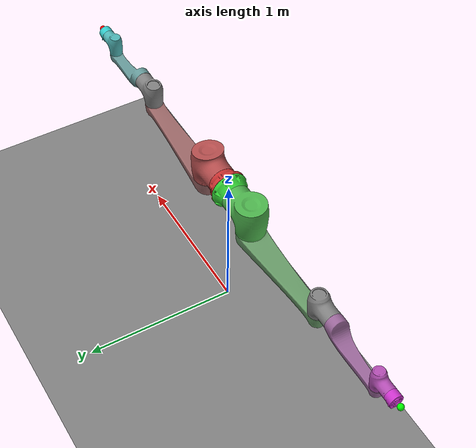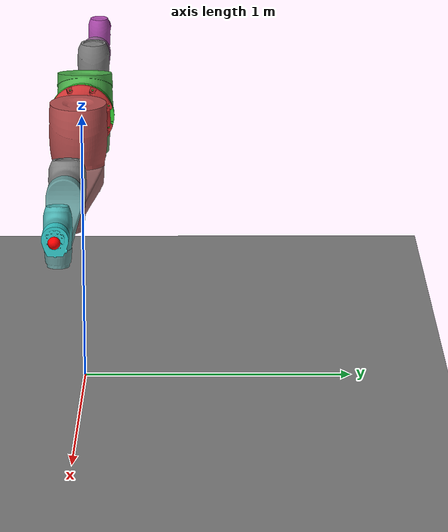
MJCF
<?xml version="1.0" ?>
<mujoco model="dual_elfin15_clean">
    <!-- 全局设置 -->
    <compiler angle="radian" coordinate="local" inertiafromgeom="true"/>

    <!-- 物理参数 -->
    <option gravity="0 0 -9.81" integrator="RK4" timestep="0.002"/>

    <!-- 资产定义 -->
    <asset>
        <!-- Elfin15网格文件 - 左侧机械臂 -->
        <mesh name="elfin_left_base" file="mjcf_models/elfin15/elfin_base.STL"/>
        <mesh name="elfin_left_link1" file="mjcf_models/elfin15/elfin_link1.STL"/>
        <mesh name="elfin_left_link2" file="mjcf_models/elfin15/elfin_link2.STL"/>
        <mesh name="elfin_left_link3" file="mjcf_models/elfin15/elfin_link3.STL"/>
        <mesh name="elfin_left_link4" file="mjcf_models/elfin15/elfin_link4.STL"/>
        <mesh name="elfin_left_link5" file="mjcf_models/elfin15/elfin_link5.STL"/>
        <mesh name="elfin_left_link6" file="mjcf_models/elfin15/elfin_link6.STL"/>

        <!-- Elfin15网格文件 - 右侧机械臂 -->
        <mesh name="elfin_right_base" file="mjcf_models/elfin15/elfin_base.STL"/>
        <mesh name="elfin_right_link1" file="mjcf_models/elfin15/elfin_link1.STL"/>
        <mesh name="elfin_right_link2" file="mjcf_models/elfin15/elfin_link2.STL"/>
        <mesh name="elfin_right_link3" file="mjcf_models/elfin15/elfin_link3.STL"/>
        <mesh name="elfin_right_link4" file="mjcf_models/elfin15/elfin_link4.STL"/>
        <mesh name="elfin_right_link5" file="mjcf_models/elfin15/elfin_link5.STL"/>
        <mesh name="elfin_right_link6" file="mjcf_models/elfin15/elfin_link6.STL"/>
    </asset>

    <!-- 默认设置 -->
    <default>
        <joint armature="0.1" damping="1" limited="true"/>
        <geom type="mesh"/>
        <motor ctrlrange="-3.14 3.14" ctrllimited="true"/>
    </default>

    <!-- 世界坐标系 -->
    <worldbody>
        <!-- 地面 -->
        <geom name="ground" type="plane" size="2 2 0.1" rgba="0.5 0.5 0.5 1" pos="0 0 0"/>

        <!-- 光源 -->
        <light diffuse=".8 .8 .8" pos="0 0 3" dir="0 0 -1"/>
        <light diffuse=".3 .3 .3" pos="2 2 2" dir="-1 -1 -1"/>

        <!-- 左侧机械臂 (红色系) -->
        <body name="left_robot_base" pos="0 0 1.0" euler="1.57 1.57 0">
            <geom type="mesh" rgba="0.8 0.2 0.2 1" mesh="elfin_left_base"/>
            <body name="left_link1" pos="0 0 0.262">
                <inertial pos="-1.88838e-06 -0.00357535 -0.0358732" quat="0.998738 0.0502277 4.92096e-05 -7.54994e-05" mass="26.1753" diaginertia="0.235853 0.212365 0.1579"/>
                <joint name="left_joint1" pos="0 0 0" axis="0 0 1" range="-3.14 3.14"/>
                <geom type="mesh" rgba="0.7 0.3 0.3 1" mesh="elfin_left_link1"/>
                <body name="left_link2" quat="0.707105 0.707108 0 0">
                    <inertial pos="2.05933e-05 0.292081 0.154042" quat="0.513249 0.485908 -0.486417 0.513681" mass="25.7827" diaginertia="1.61404 1.59116 0.0559177"/>
                    <joint name="left_joint2" pos="0 0 0" axis="0 0 1" range="-2.35 2.35"/>
                    <geom type="mesh" rgba="0.6 0.4 0.4 1" mesh="elfin_left_link2"/>
                    <body name="left_link3" pos="0 0.73 0" quat="-2.59734e-06 0.707105 0.707108 -2.59735e-06">
                        <inertial pos="0.0361013 -2.09104e-06 -0.00436987" quat="0.529158 0.469078 0.469085 0.529072" mass="7.87585" diaginertia="0.036645 0.0320625 0.019885"/>
                        <joint name="left_joint3" pos="0 0 0" axis="0 0 1" range="-2.61 2.61"/>
                        <geom type="mesh" rgba="0.5 0.5 0.5 1" mesh="elfin_left_link3"/>
                        <body name="left_link4" quat="0.499998 0.5 0.500002 0.5">
                            <inertial pos="3.69862e-05 -0.0650226 0.320849" quat="0.992592 0.121493 0.000259111 -0.000578748" mass="7.61388" diaginertia="0.16194 0.159247 0.0128573"/>
                            <joint name="left_joint4" pos="0 0 0" axis="0 0 1" range="-3.14 3.14"/>
                            <geom type="mesh" rgba="0.4 0.6 0.6 1" mesh="elfin_left_link4"/>
                            <body name="left_link5" pos="0 0 0.57" quat="0.707105 -0.707108 0 0">
                                <inertial pos="6.77522e-06 -0.0250232 -0.002491" quat="0.754143 0.656711 0.00028124 -0.000151073" mass="3.39285" diaginertia="0.00944879 0.00740998 0.00543183"/>
                                <joint name="left_joint5" pos="0 0 0" axis="0 0 1" range="-2.56 2.56"/>
                                <geom type="mesh" rgba="0.3 0.7 0.7 1" mesh="elfin_left_link5"/>
                                <body name="left_link6" quat="0.707105 0.707108 0 0">
                                    <inertial pos="6.22099e-05 -0.00431405 0.139458" quat="0.506404 0.493377 -0.485637 0.514093" mass="0.352384" diaginertia="0.000345682 0.000280644 0.000240015"/>
                                    <joint name="left_joint6" pos="0 0 0" axis="0 0 1" range="-3.14 3.14"/>
                                    <geom type="mesh" rgba="0.2 0.8 0.8 1" mesh="elfin_left_link6"/>

                                    <!-- 左侧末端执行器 -->
                                    <body name="left_end_effector" pos="0 0 0.2">
                                        <geom name="left_end_marker" type="sphere" size="0.02" rgba="1 0 0 1"/>
                                        <!-- 左末端传感器位置 -->
                                        <site name="left_end_site" pos="0 0 0" size="0.01"/>
                                    </body>
                                </body>
                            </body>
                        </body>
                    </body>
                </body>
            </body>
        </body>

        <!-- 右侧机械臂 (绿色系) -->
        <body name="right_robot_base" pos="0 0 1.0" euler="1.57 -1.57 0">
            <geom type="mesh" rgba="0.2 0.8 0.2 1" mesh="elfin_right_base"/>
            <body name="right_link1" pos="0 0 0.262">
                <inertial pos="-1.88838e-06 -0.00357535 -0.0358732" quat="0.998738 0.0502277 4.92096e-05 -7.54994e-05" mass="26.1753" diaginertia="0.235853 0.212365 0.1579"/>
                <joint name="right_joint1" pos="0 0 0" axis="0 0 1" range="-3.14 3.14"/>
                <geom type="mesh" rgba="0.3 0.7 0.3 1" mesh="elfin_right_link1"/>
                <body name="right_link2" quat="0.707105 0.707108 0 0">
                    <inertial pos="2.05933e-05 0.292081 0.154042" quat="0.513249 0.485908 -0.486417 0.513681" mass="25.7827" diaginertia="1.61404 1.59116 0.0559177"/>
                    <joint name="right_joint2" pos="0 0 0" axis="0 0 1" range="-2.35 2.35"/>
                    <geom type="mesh" rgba="0.4 0.6 0.4 1" mesh="elfin_right_link2"/>
                    <body name="right_link3" pos="0 0.73 0" quat="-2.59734e-06 0.707105 0.707108 -2.59735e-06">
                        <inertial pos="0.0361013 -2.09104e-06 -0.00436987" quat="0.529158 0.469078 0.469085 0.529072" mass="7.87585" diaginertia="0.036645 0.0320625 0.019885"/>
                        <joint name="right_joint3" pos="0 0 0" axis="0 0 1" range="-2.61 2.61"/>
                        <geom type="mesh" rgba="0.5 0.5 0.5 1" mesh="elfin_right_link3"/>
                        <body name="right_link4" quat="0.499998 0.5 0.500002 0.5">
                            <inertial pos="3.69862e-05 -0.0650226 0.320849" quat="0.992592 0.121493 0.000259111 -0.000578748" mass="7.61388" diaginertia="0.16194 0.159247 0.0128573"/>
                            <joint name="right_joint4" pos="0 0 0" axis="0 0 1" range="-3.14 3.14"/>
                            <geom type="mesh" rgba="0.6 0.4 0.6 1" mesh="elfin_right_link4"/>
                            <body name="right_link5" pos="0 0 0.57" quat="0.707105 -0.707108 0 0">
                                <inertial pos="6.77522e-06 -0.0250232 -0.002491" quat="0.754143 0.656711 0.00028124 -0.000151073" mass="3.39285" diaginertia="0.00944879 0.00740998 0.00543183"/>
                                <joint name="right_joint5" pos="0 0 0" axis="0 0 1" range="-2.56 2.56"/>
                                <geom type="mesh" rgba="0.7 0.3 0.7 1" mesh="elfin_right_link5"/>
                                <body name="right_link6" quat="0.707105 0.707108 0 0">
                                    <inertial pos="6.22099e-05 -0.00431405 0.139458" quat="0.506404 0.493377 -0.485637 0.514093" mass="0.352384" diaginertia="0.000345682 0.000280644 0.000240015"/>
                                    <joint name="right_joint6" pos="0 0 0" axis="0 0 1" range="-3.14 3.14"/>
                                    <geom type="mesh" rgba="0.8 0.2 0.8 1" mesh="elfin_right_link6"/>

                                    <!-- 右侧末端执行器 -->
                                    <body name="right_end_effector" pos="0 0 0.2">
                                        <geom name="right_end_marker" type="sphere" size="0.02" rgba="0 1 0 1"/>
                                        <!-- 右末端传感器位置 -->
                                        <site name="right_end_site" pos="0 0 0" size="0.01"/>
                                    </body>
                                </body>
                            </body>
                        </body>
                    </body>
                </body>
            </body>
        </body>

    </worldbody>

    <!-- 执行器定义 -->

    <!-- 执行器定义 -->
    <actuator>
        <!-- 左侧机械臂电机 -->
        <general name="left_motor1" joint="left_joint1" gainprm="1" ctrlrange="-3.14 3.14"/>
        <general name="left_motor2" joint="left_joint2" gainprm="1" ctrlrange="-3.14 3.14"/>
        <general name="left_motor3" joint="left_joint3" gainprm="1" ctrlrange="-3.14 3.14"/>
        <general name="left_motor4" joint="left_joint4" gainprm="1" ctrlrange="-3.14 3.14"/>
        <general name="left_motor5" joint="left_joint5" gainprm="1" ctrlrange="-3.14 3.14"/>
        <general name="left_motor6" joint="left_joint6" gainprm="1" ctrlrange="-3.14 3.14"/>

        <!-- 右侧机械臂电机 -->
        <general name="right_motor1" joint="right_joint1" gainprm="1" ctrlrange="-3.14 3.14"/>
        <general name="right_motor2" joint="right_joint2" gainprm="1" ctrlrange="-3.14 3.14"/>
        <general name="right_motor3" joint="right_joint3" gainprm="1" ctrlrange="-3.14 3.14"/>
        <general name="right_motor4" joint="right_joint4" gainprm="1" ctrlrange="-3.14 3.14"/>
        <general name="right_motor5" joint="right_joint5" gainprm="1" ctrlrange="-3.14 3.14"/>
        <general name="right_motor6" joint="right_joint6" gainprm="1" ctrlrange="-3.14 3.14"/>
    </actuator>

    <!-- 等式约束 - 双臂末端刚性连接 -->
    <equality>
        <!-- 直接将两个末端执行器刚性连接，模拟抓取同一物体 -->
        <weld name="dual_arm_rigid_grasp"
              body1="left_end_effector"
              body2="right_end_effector"
              anchor="0 0 0.2"
              relpose="0 0 0 0 1 0 0"/>

    </equality>

    <!-- 传感器 - 监测双臂协作力 -->
    <sensor>
        <force name="left_end_force" site="left_end_site"/>
        <torque name="left_end_torque" site="left_end_site"/>
        <force name="right_end_force" site="right_end_site"/>
        <torque name="right_end_torque" site="right_end_site"/>
    </sensor>

    <!-- 关键帧定义 -->
    <keyframe>
        <key name="home" qpos=" 0.14403416 -0.62792113  1.70052709  3.14 -0.81314359  0.14512927
        -1.44034160e-01  6.27921130e-01 -1.70052709e+00  1.59265359e-03
 -8.13143590e-01  2.99646338e+00"
             ctrl=" 0.14403416 -0.62792113  1.70052709  3.14   -0.81314359  0.14512927
             -1.44034160e-01  6.27921130e-01 -1.70052709e+00  1.59265359e-03
 -8.13143590e-01  2.99646338e+00"/>
    </keyframe>
</mujoco>
